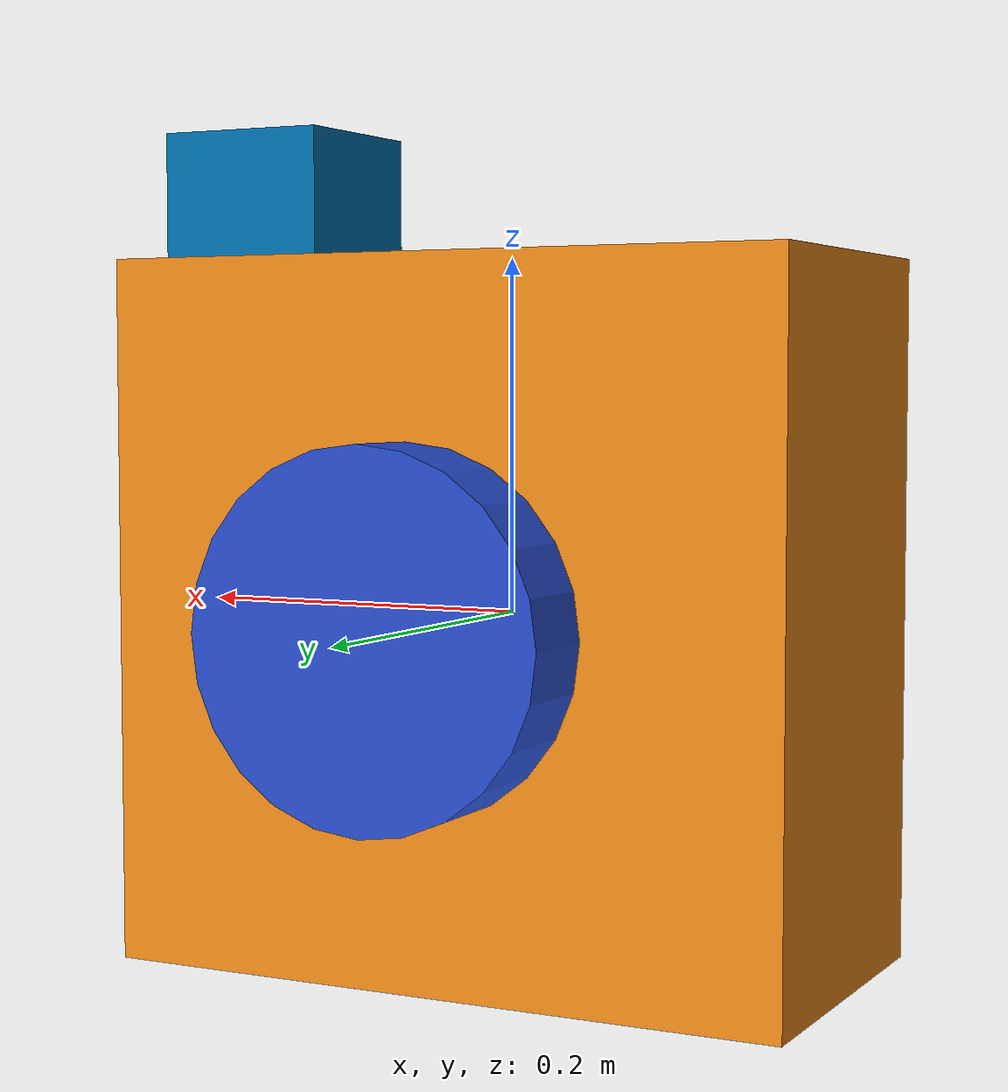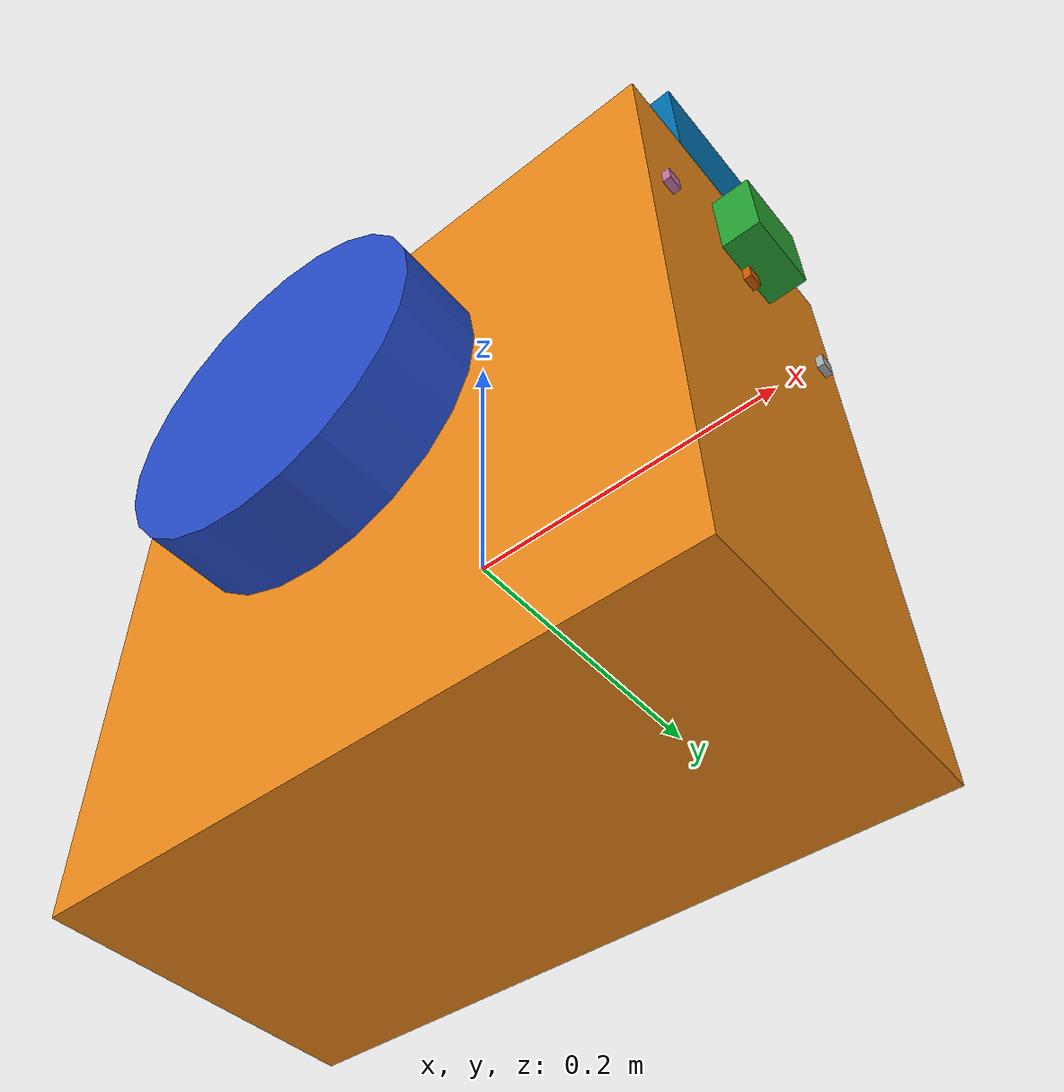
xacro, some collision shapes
<?xml version='1.0'?>

<robot name="myrobot" xmlns:xacro="http://www.ros.org/wiki/xacro">

  <xacro:property name="cameraSize" value="0.05"/>
  <xacro:property name="cameraMass" value="0.1"/>

  <xacro:include filename="$(find mybot_description)/urdf/mybot.gazebo" />
  <xacro:include filename="$(find mybot_description)/urdf/materials.xacro" />
  <xacro:include filename="$(find mybot_description)/urdf/macros.xacro" />

  <link name='chassis'>
    <pose>0 0 0.1 0 0 0</pose>

    <inertial>
      <mass value="15.0"/>
      <origin xyz="0.0 0 0.1" rpy=" 0 0 0"/>
      <inertia
          ixx="0.1" ixy="0" ixz="0"
          iyy="0.1" iyz="0"
          izz="0.1"
      />
    </inertial>

    <collision name='collision'>
      <geometry>
        <box size=".4 .2 .1"/>
      </geometry>
    </collision>

    <visual name='chassis_visual'>
      <origin xyz="0 0 0" rpy=" 0 0 0"/>
      <geometry>
        <box size=".4 .2 .4"/>
      </geometry>
    </visual>

    <collision name='caster_collision'>
      <origin xyz="-0.15 0 -0.05" rpy=" 0 0 0"/>
      <geometry>
        <sphere radius="0.05"/>
      </geometry>
      <surface>
        <friction>
          <ode>
            <mu>0</mu>
            <mu2>0</mu2>
            <slip1>1.0</slip1>
            <slip2>1.0</slip2>
          </ode>
        </friction>
      </surface>
    </collision>

    <visual name='caster_visual'>
      <origin xyz="-0.15 0 -0.05" rpy=" 0 0 0"/>
      <geometry>
        <sphere radius="0.05"/>
      </geometry>
    </visual>

    <collision name='caster_front_collision'>
      <origin xyz="0.15 0 -0.05" rpy=" 0 0 0"/>
      <geometry>
        <sphere radius="0.05"/>
      </geometry>
      <surface>
        <friction>
          <ode>
            <mu>0</mu>
            <mu2>0</mu2>
            <slip1>1.0</slip1>
            <slip2>1.0</slip2>
          </ode>
        </friction>
      </surface>
    </collision>

    <visual name='caster_front_visual'>
      <origin xyz="0.15 0 -0.05" rpy=" 0 0 0"/>
      <geometry>
        <sphere radius="0.05"/>
      </geometry>
    </visual>

  </link>

  <link name="left_wheel">
    <!--origin xyz="0.1 0.13 0.1" rpy="0 1.5707 1.5707"/-->
    <collision name="collision">
      <origin xyz="0 0 0" rpy="0 1.5707 1.5707"/>
      <geometry>
        <cylinder radius="0.1" length="0.05"/>
      </geometry>
    </collision>
    <visual name="left_wheel_visual">
      <origin xyz="0 0 0" rpy="0 1.5707 1.5707"/>
      <geometry>
        <cylinder radius="0.1" length="0.05"/>
      </geometry>
    </visual>
    <inertial>
      <origin xyz="0 0 0" rpy="0 1.5707 1.5707"/>
      <mass value="5"/>
      <inertia
        ixx=".1" ixy="0.0" ixz="0.0"
        iyy=".1" iyz="0.0"
        izz=".1"/>
    </inertial>
  </link>

  <link name="right_wheel">
    <!--origin xyz="0.1 -0.13 0.1" rpy="0 1.5707 1.5707"/-->
    <collision name="collision">
      <origin xyz="0 0 0" rpy="0 1.5707 1.5707"/>
      <geometry>
        <cylinder radius="0.1" length="0.05"/>
      </geometry>
    </collision>
    <visual name="right_wheel_visual">
      <origin xyz="0 0 0" rpy="0 1.5707 1.5707"/>
      <geometry>
        <cylinder radius="0.1" length="0.05"/>
      </geometry>
    </visual>
    <inertial>
      <origin xyz="0 0 0" rpy="0 1.5707 1.5707"/>
      <mass value="5"/>
      <inertia
        ixx=".1" ixy="0.0" ixz="0.0"
        iyy=".1" iyz="0.0"
        izz=".1"/>
    </inertial>
  </link>

  <joint type="continuous" name="left_wheel_hinge">
    <origin xyz="0 0.15 0" rpy="0 0 0"/>
    <!--origin xyz="0.1 0.13 0" rpy="0 1.5707 1.5707"/-->
    <child link="left_wheel"/>
    <parent link="chassis"/>
    <axis xyz="0 1 0" rpy="0 0 0"/>
    <limit effort="10000" velocity="1000"/>
    <joint_properties damping="1.0" friction="1.0"/>
  </joint>

  <joint type="continuous" name="right_wheel_hinge">
    <origin xyz="0 -0.15 0" rpy="0 0 0"/>
    <!--origin xyz="0.1 -0.13 0" rpy="0 1.5707 1.5707"/-->
    <child link="right_wheel"/>
    <parent link="chassis"/>
    <axis xyz="0 1 0" rpy="0 0 0"/>
    <limit effort="10000" velocity="1000"/>
    <joint_properties damping="1.0" friction="1.0"/>
  </joint>

  <link name="camera">
    <collision>
      <origin xyz="0 0 0" rpy="0 0 0"/>
      <geometry>
        <box size="${cameraSize} ${cameraSize} ${cameraSize}"/>
      </geometry>
    </collision>

    <visual>
      <origin xyz="0 0 0" rpy="0 0 0"/>
      <geometry>
        <box size="${cameraSize} ${cameraSize} ${cameraSize}"/>
      </geometry>
      <material name="green"/>
    </visual>

    <inertial>
      <mass value="${cameraMass}" />
      <origin xyz="0 0 0" rpy="0 0 0"/>
      <box_inertia m="${cameraMass}" x="${cameraSize}" y="${cameraSize}" z="${cameraSize}" />
      <inertia ixx="1e-6" ixy="0" ixz="0" iyy="1e-6" iyz="0" izz="1e-6" />
    </inertial>
  </link>

  <joint name="camera_joint" type="fixed">
    <axis xyz="0 1 0" />
    <origin xyz=".2 0 0.135" rpy="0 0 0"/>
    <parent link="chassis"/>
    <child link="camera"/>
  </joint>

  <joint name="hokuyo_joint" type="fixed">
    <axis xyz="0 1 0" />
    <origin xyz=".15 0 .225" rpy="0 0 0"/>
    <parent link="chassis"/>
    <child link="hokuyo"/>
  </joint>

  <!-- Hokuyo Laser -->
  <link name="hokuyo">
    <collision>
      <origin xyz="0 0 0" rpy="0 0 0"/>
      <geometry>
    <box size="0.1 0.1 0.1"/>
      </geometry>
    </collision>

    <visual>
      <origin xyz="0 0 0" rpy="0 0 0"/>
      <geometry>
        <mesh filename="package://mybot_description/meshes/hokuyo.dae"/>
      </geometry>
    </visual>

    <inertial>
      <mass value="1e-5" />
      <origin xyz="0 0 0" rpy="0 0 0"/>
      <inertia ixx="1e-6" ixy="0" ixz="0" iyy="1e-6" iyz="0" izz="1e-6" />
    </inertial>
  </link>

  <joint name="ir_front_joint_5" type="fixed">
    <axis xyz="0 1 0" />
    <origin rpy="0 0 0" xyz="0.20 0 0.105" />
    <parent link="chassis"/>
    <child link="base_ir_front_5"/>
  </joint>

  <link name="base_ir_front_5">
    <collision>
      <origin xyz="0 0 0" rpy="0 0 0"/>
      <geometry>
        <box size="0.01 0.01 0.01"/>
      </geometry>
    </collision>

    <visual>
      <origin xyz="0 0 0" rpy="0 0 0"/>
      <geometry>
        <box size="0.01 0.01 0.01"/>
      </geometry>
    </visual>

    <inertial>
      <mass value="1e-5" />
      <origin xyz="0 0 0" rpy="0 0 0"/>
      <inertia ixx="1e-6" ixy="0" ixz="0" iyy="1e-6" iyz="0"  izz="1e-6" />
    </inertial>
  </link>

  <joint name="ir_front_joint_4" type="fixed">
    <axis xyz="0 1 0" />
    <origin rpy="0 0 0" xyz="0.20 -0.08 0.105" />
    <parent link="chassis"/>
    <child link="base_ir_front_4"/>
  </joint>

  <link name="base_ir_front_4">
    <collision>
      <origin xyz="0 0 0" rpy="0 0 0"/>
      <geometry>
        <box size="0.01 0.01 0.01"/>
      </geometry>
    </collision>

    <visual>
      <origin xyz="0 0 0" rpy="0 0 0"/>
      <geometry>
        <box size="0.01 0.01 0.01"/>
      </geometry>
    </visual>

    <inertial>
      <mass value="1e-5" />
      <origin xyz="0 0 0" rpy="0 0 0"/>
      <inertia ixx="1e-6" ixy="0" ixz="0" iyy="1e-6" iyz="0"  izz="1e-6" />
    </inertial>
  </link>

  <joint name="ir_front_joint_3" type="fixed">
    <axis xyz="0 1 0" />
    <origin rpy="0 0 0" xyz="0.20 0.08 0.105" />
    <parent link="chassis"/>
    <child link="base_ir_front_3"/>
  </joint>

  <link name="base_ir_front_3">
    <collision>
      <origin xyz="0 0 0" rpy="0 0 0"/>
      <geometry>
        <box size="0.01 0.01 0.01"/>
      </geometry>
    </collision>

    <visual>
      <origin xyz="0 0 0" rpy="0 0 0"/>
      <geometry>
        <box size="0.01 0.01 0.01"/>
      </geometry>
    </visual>

    <inertial>
      <mass value="1e-5" />
      <origin xyz="0 0 0" rpy="0 0 0"/>
      <inertia ixx="1e-6" ixy="0" ixz="0" iyy="1e-6" iyz="0"  izz="1e-6" />
    </inertial>
  </link>

</robot>
